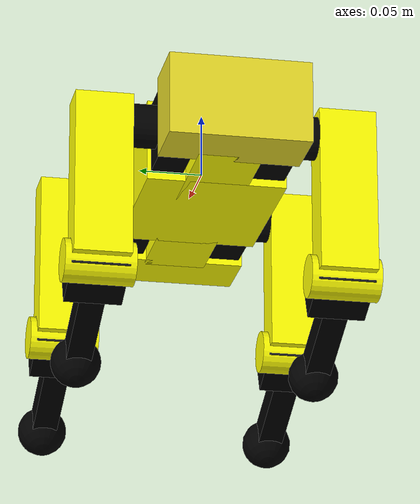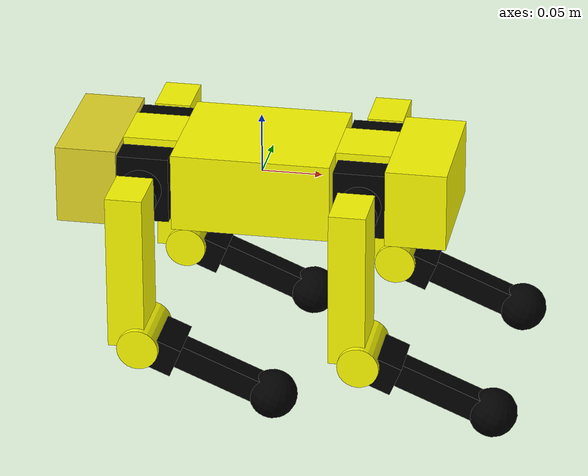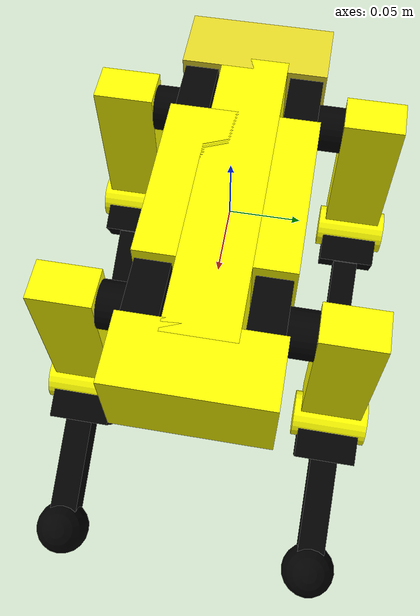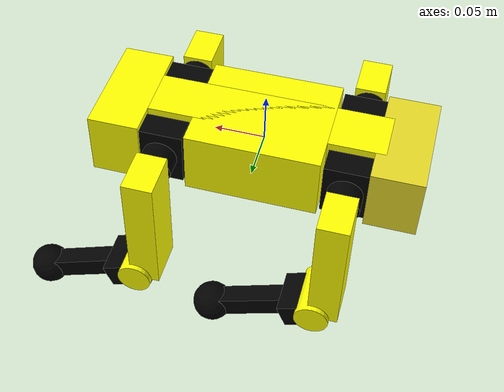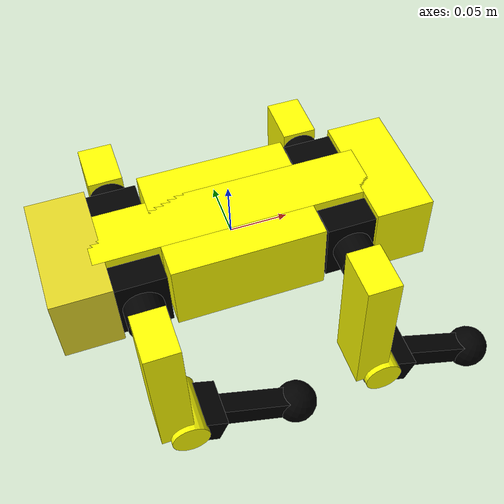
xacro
<?xml version="1.0"?>
<robot name="spotmicro" xmlns:xacro="http://ros.org/wiki/xacro">
<xacro:property name="radius" value="0.01" />
<xacro:property name="offset_y" value="0.04" />
<xacro:property name="offset_x" value="0.09" />
<xacro:property name="offset_z" value="0.01" />
<xacro:property name="a" value="0.01" />
<xacro:property name="b" value="0.055" />
<xacro:property name="c" value="0.11" />
<xacro:property name="d" value="0.01" />
<xacro:property name="e" value="0.115" />

<xacro:include filename="$(find spotmicro)/urdf/common.xacro" />

<material name="black">
    <color rgba="0.0 0.0 0.0 1.0"/>
  </material>
  <material name="yellow">
    <color rgba="1.0 1.0 0.0 1.0"/>
  </material>

<xacro:macro name="leg" params="name l f">
	<joint name="${name}0" type="revolute">
        <parent link="base_link"/>
        <child link="${name}a"/>
        <axis xyz="1 0 0"/>
        <origin xyz="${offset_x*f} ${offset_y*l} ${offset_z}" rpy="0 0 0"/>
        <limit lower="${-pi/4}" upper="${pi/4}" effort="1000.0" velocity="1.5"/>
    </joint>
    <link name="${name}a">
    	<visual>
    		<geometry>
                <box size="0.045 0.025 0.055" />
    		</geometry>
    		<origin xyz="0 0 ${-a}" rpy="0 0 0"/>
            <material name="black"/>
    	</visual>
        <visual>
            <geometry>
                <cylinder radius="0.017" length="0.02"/>
            </geometry>
            <origin xyz="0 ${l*(0.025+0.02)/2} ${-a}" rpy="${pi/2} 0 0"/>
            <material name="black"/>
        </visual>
        <collision>
            <geometry>
                <box size="0.045 0.075 0.025"/>
            </geometry>
            <origin rpy="0 0 0" xyz="0 0 0"/>
        </collision>
        <xacro:box_inertial x="0.24" y="0.11" z="0.065" mass="0.06"/>
    </link>
    <gazebo reference="${name}a">
        <material>Gazebo/Black</material>
        <kp>1000000.0</kp>
        <kd>100.0</kd>
        <mu1>100</mu1>
        <mu2>100</mu2>
    </gazebo>
    <joint name="${name}1" type="revolute">
        <parent link="${name}a"/>
        <child link="${name}b"/>
        <axis xyz="1 0 0"/>
        <origin xyz="0 ${l*b} ${-a}" rpy="${-pi/2} 0 ${pi/2}"/>
        <limit lower="${-pi/4}" upper="${pi*3/4}" effort="1000.0" velocity="1.5"/>
    </joint>
    <link name="${name}b">
    	<visual>
    		<geometry>
    			<box size="0.045 0.13 0.03"/>
    		</geometry>
    		<origin xyz="0 0.045 0" rpy="0 0 0"/>
            <material name="yellow"/>
    	</visual>
        <visual>
            <geometry>
                <cylinder radius="0.017" length="0.055"/>
            </geometry>
            <origin xyz="0 ${c} ${-d}" rpy="0 ${pi/2} 0"/>
            <material name="yellow"/>
        </visual>
        <collision>
            <geometry>
                <box size="0.045 0.13 0.03"/>
            </geometry>
            <origin xyz="0 0.045 0" rpy="0 0 0"/>
        </collision>
        <xacro:box_inertial_with_origin x="0.045" y="0.13" z="0.03" mass="0.07">
            <origin xyz="0 0.045 0" rpy="0 0 0"/>
        </xacro:box_inertial_with_origin>
    </link>
    <gazebo reference="${name}b">
        <material>Gazebo/Yellow</material>
        <kp>1000000.0</kp>
        <kd>100.0</kd>
        <mu1>100</mu1>
        <mu2>100</mu2>
    </gazebo>
    <joint name="${name}2" type="revolute">
        <parent link="${name}b"/>
        <child link="${name}c"/>
        <axis xyz="1 0 0"/>
        <origin xyz="0 ${c} ${-d}" rpy="${-pi} 0 0"/>
        <limit lower="${pi/4}" upper="${pi}" effort="1000.0" velocity="1.5"/>
    </joint>
    <link name="${name}c">
        <visual>
            <geometry>
                <box size="0.045 0.045 0.025"/>
            </geometry>
            <origin xyz="0 0.01 0" rpy="0 0 0"/>
            <material name="black"/>
        </visual>
    	<visual>
    		<geometry>
    			<box size="0.02 0.115 0.02"/>
    		</geometry>
    		<origin xyz="0 0.055 0" rpy="0 0 0"/>
            <material name="black"/>
    	</visual>
        <collision>
            <geometry>
                <box size="0.045 0.115 0.025"/>
            </geometry>
            <origin xyz="0 0.045 0" rpy="0 0 0"/>
        </collision>
        <xacro:box_inertial_with_origin x="0.045" y="0.045" z="0.025" mass="0.06">
            <origin xyz="0 0.01 0" rpy="0 0 0"/>
        </xacro:box_inertial_with_origin>
    </link>
    <gazebo reference="${name}c">
        <material>Gazebo/Black</material>
        <kp>1000000.0</kp>
        <kd>100.0</kd>
        <mu1>100</mu1>
        <mu2>100</mu2>
    </gazebo>
    <joint name="${name}3" type="fixed">
        <parent link="${name}c"/>
        <child link="${name}d"/>
        <origin xyz="0 ${e} 0" rpy="0 0 0"/>
    </joint>
    <link name="${name}d">
        <visual>
            <geometry>
                <sphere radius="0.02"/>
            </geometry>
            <origin xyz="0 0 0" rpy="0 0 0"/>
            <material name="black"/>
        </visual>
        <collision>
            <geometry>
                <sphere radius="0.02"/>
            </geometry>
            <origin xyz="0 0 0" rpy="0 0 0"/>
        </collision>
        <xacro:sphere_inertial radius="0.02" mass="0.01"/>
    </link>
    <gazebo reference="${name}d">
        <material>Gazebo/Black</material>
        <kp>1000000.0</kp>
        <kd>1.0</kd>
        <mu1>200</mu1>
        <mu2>100</mu2>
    </gazebo>
</xacro:macro>

<link name="base_link">
    <visual>
        <geometry>
            <box size="0.24 0.05 0.065"/>
        </geometry>
        <material name="yellow"/>
    </visual>
    <visual>
        <geometry>
            <box size="0.13 0.11 0.065"/>
        </geometry>
        <material name="yellow"/>
    </visual>
    <visual>
        <geometry>
            <box size="0.05 0.11 0.065"/>
        </geometry>
        <origin xyz="${0.13/2+0.07} 0 0" rpy="0 0 0"/>
        <material name="yellow"/>
    </visual>
    <visual>
        <geometry>
            <box size="0.05 0.11 0.065"/>
        </geometry>
        <origin xyz="${-0.13/2-0.07} 0 0" rpy="0 0 0"/>
    </visual>
    <collision>
        <geometry>
            <box size="0.24 0.11 0.065"/>
        </geometry>
        <origin rpy="0 0 0" xyz="0 0 0"/>
    </collision>
    <xacro:box_inertial_with_origin x="0.24" y="0.11" z="0.065" mass="0.6">
        <origin xyz="0.05 0 0" rpy="0 0 0"/>
    </xacro:box_inertial_with_origin>
</link>
<gazebo reference="base_link">
        <material>Gazebo/Yellow</material>
        <kp>1000000.0</kp>
        <kd>100.0</kd>
        <mu1>100</mu1>
        <mu2>100</mu2>
    </gazebo>

<xacro:leg name="lf" l="1" f="1"/>
<xacro:leg name="lr" l="1" f="-1"/>
<xacro:leg name="rf" l="-1" f="1"/>
<xacro:leg name="rr" l="-1" f="-1"/>

<xacro:macro name="transmission_block" params="joint_name">
      <transmission name="${joint_name}_tran">
        <type>transmission_interface/SimpleTransmission</type>
        <joint name="${joint_name}">
          <hardwareInterface>hardware_interface/PositionJointInterface</hardwareInterface>
        </joint>
        <actuator name="${joint_name}_motor">
          <hardwareInterface>hardware_interface/PositionJointInterface</hardwareInterface>
          <mechanicalReduction>1</mechanicalReduction>
        </actuator>
      </transmission>
   </xacro:macro>

 <!-- Transmissions for ROS Control -->

   <xacro:transmission_block joint_name="lf0"/>
   <xacro:transmission_block joint_name="lf1"/>
   <xacro:transmission_block joint_name="lf2"/>
   <xacro:transmission_block joint_name="rf0"/>
   <xacro:transmission_block joint_name="rf1"/>
   <xacro:transmission_block joint_name="rf2"/>
   <xacro:transmission_block joint_name="lr0"/>
   <xacro:transmission_block joint_name="lr1"/>
   <xacro:transmission_block joint_name="lr2"/>
   <xacro:transmission_block joint_name="rr0"/>
   <xacro:transmission_block joint_name="rr1"/>
   <xacro:transmission_block joint_name="rr2"/>

<!-- ros_control plugin -->
  <gazebo>
    <plugin name="gazebo_ros_control" filename="libgazebo_ros_control.so">
    </plugin>
  </gazebo>

</robot>

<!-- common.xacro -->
<!-- https://github.com/uos/uos_tools/blob/fuerte/uos_common_urdf/common.xacro -->

<robot
  xmlns:xacro="http://ros.org/wiki/xacro">
  <property name="M_PI" value="3.1415926535897931" />

  <!-- see https://secure.wikimedia.org/wikipedia/en/wiki/List_of_moment_of_inertia_tensors -->

  <!-- #################### versions without origin #################### -->
  <xacro:macro name="sphere_inertial" params="radius mass">
    <inertial>
      <mass value="${mass}" />
      <origin xyz="0 0 0" />
      <inertia ixx="${0.4 * mass * radius * radius}" ixy="0.0" ixz="0.0"
        iyy="${0.4 * mass * radius * radius}" iyz="0.0"
        izz="${0.4 * mass * radius * radius}" />
    </inertial>
  </xacro:macro>

  <xacro:macro name="cylinder_inertial" params="radius length mass">
    <inertial>
      <mass value="${mass}" />
      <origin xyz="0 0 0" />
      <inertia ixx="${0.0833333 * mass * (3 * radius * radius + length * length)}" ixy="0.0" ixz="0.0"
        iyy="${0.0833333 * mass * (3 * radius * radius + length * length)}" iyz="0.0"
        izz="${0.5 * mass * radius * radius}" />
    </inertial>
  </xacro:macro>

  <xacro:macro name="box_inertial" params="x y z mass">
    <inertial>
      <mass value="${mass}" />
      <origin xyz="0 0 0" />
      <inertia ixx="${0.0833333 * mass * (y*y + z*z)}" ixy="0.0" ixz="0.0"
        iyy="${0.0833333 * mass * (x*x + z*z)}" iyz="0.0"
        izz="${0.0833333 * mass * (x*x + y*y)}" />
    </inertial>
  </xacro:macro>

  <!-- #################### versions with origin #################### -->
  <xacro:macro name="sphere_inertial_with_origin" params="radius mass *origin">
    <inertial>
      <mass value="${mass}" />
      <insert_block name="origin" />
      <inertia ixx="${0.4 * mass * radius * radius}" ixy="0.0" ixz="0.0"
        iyy="${0.4 * mass * radius * radius}" iyz="0.0"
        izz="${0.4 * mass * radius * radius}" />
    </inertial>
  </xacro:macro>

  <xacro:macro name="cylinder_inertial_with_origin" params="radius length mass *origin">
    <inertial>
      <mass value="${mass}" />
      <insert_block name="origin" />
      <inertia ixx="${0.0833333 * mass * (3 * radius * radius + length * length)}" ixy="0.0" ixz="0.0"
        iyy="${0.0833333 * mass * (3 * radius * radius + length * length)}" iyz="0.0"
        izz="${0.5 * mass * radius * radius}" />
    </inertial>
  </xacro:macro>

  <xacro:macro name="box_inertial_with_origin" params="x y z mass *origin">
    <inertial>
      <mass value="${mass}" />
      <insert_block name="origin" />
      <inertia ixx="${0.0833333 * mass * (y*y + z*z)}" ixy="0.0" ixz="0.0"
        iyy="${0.0833333 * mass * (x*x + z*z)}" iyz="0.0"
        izz="${0.0833333 * mass * (x*x + y*y)}" />
    </inertial>
  </xacro:macro>

</robot>
